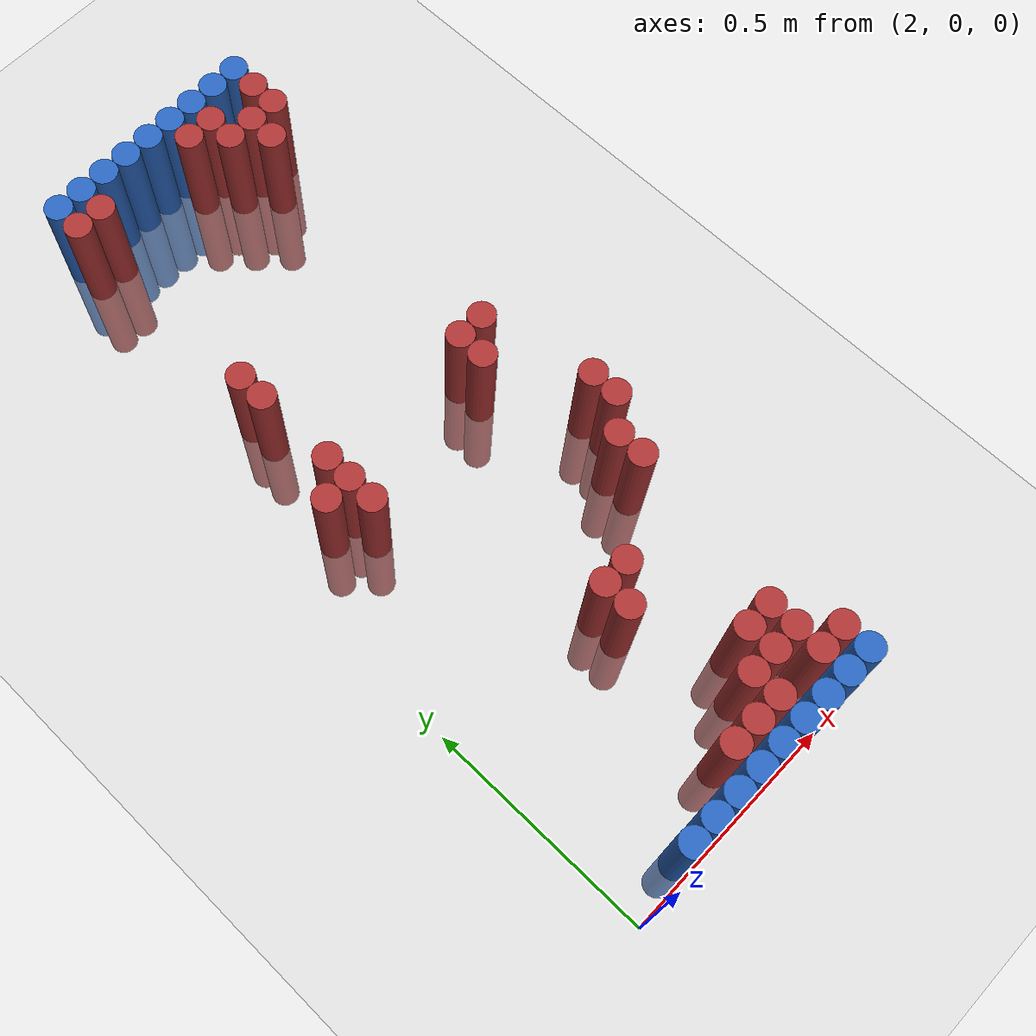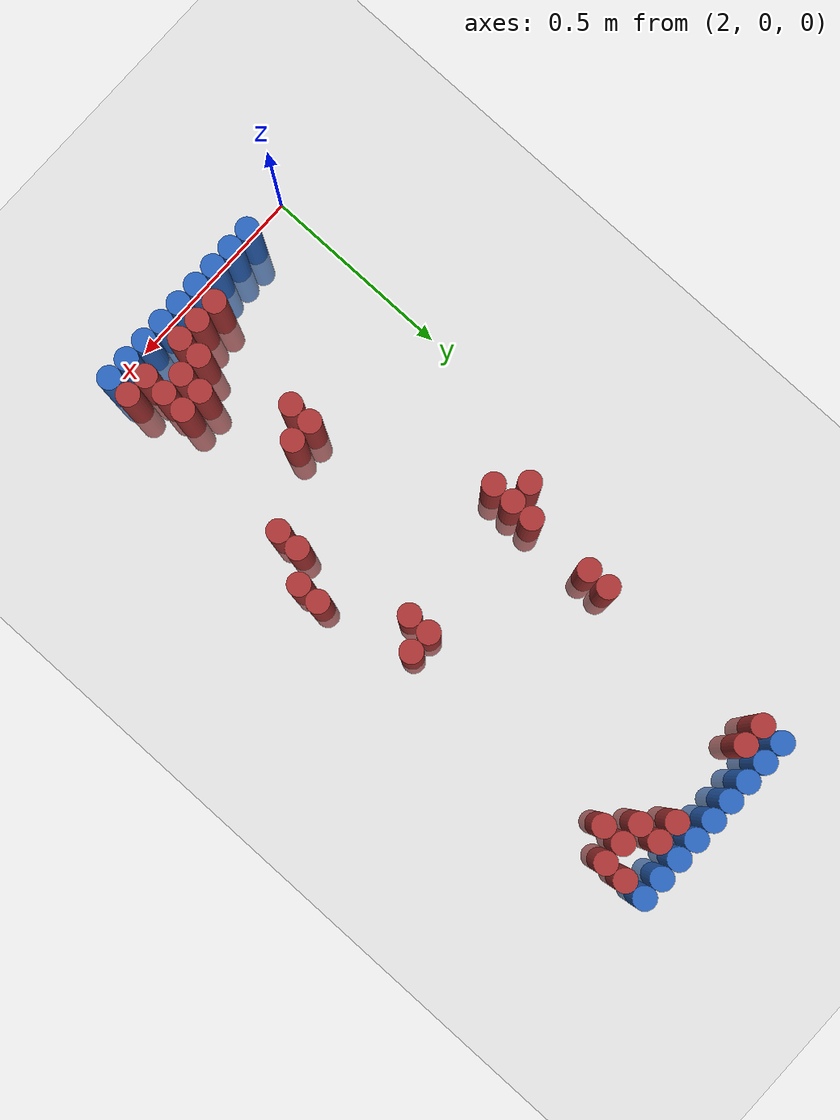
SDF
<sdf version="1.6">
 <world name="default">
  <model name="ground_plane">
   <static>1</static>
   <link name="link">
    <collision name="collision">
     <geometry><plane><normal>0 0 1</normal><size>100 100</size></plane></geometry>
     <surface><friction><ode><mu>100</mu><mu2>50</mu2></ode></friction></surface>
    </collision>
    <visual name="visual">
     <cast_shadows>0</cast_shadows>
     <geometry><plane><normal>0 0 1</normal><size>100 100</size></plane></geometry>
     <material>
      <script><uri>file://media/materials/scripts/gazebo.material</uri><name>Gazebo/Grey</name></script>
     </material>
    </visual>
   </link>
  </model>
  <model name="unit_cylinder_97">
   <static>1</static>
   <pose>2.190000 1.770000 0.000000 0.000000 0.000000 0.000000</pose>
   <link name="link">
    <inertial>
     <mass>1</mass>
     <inertia><ixx>0.145833</ixx><ixy>0</ixy><ixz>0</ixz><iyy>0.145833</iyy><iyz>0</iyz><izz>0.125</izz></inertia>
    </inertial>
    <collision name="collision">
     <geometry><cylinder><radius>0.030000</radius><length>0.5</length></cylinder></geometry>
    </collision>
    <visual name="visual">
     <geometry><cylinder><radius>0.030000</radius><length>0.5</length></cylinder></geometry>
     <material>
      <ambient>0.152000 0.379000 0.720000 1</ambient>
      <diffuse>0.152000 0.379000 0.720000 1</diffuse>
     </material>
     <material>
      <script><name>Gazebo/Grey</name><uri>file://media/materials/scripts/gazebo.material</uri></script>
     </material>
    </visual>
   </link>
  </model>
  <model name="unit_cylinder_98">
   <static>1</static>
   <pose>2.250000 1.770000 0.000000 0.000000 0.000000 0.000000</pose>
   <link name="link">
    <inertial>
     <mass>1</mass>
     <inertia><ixx>0.145833</ixx><ixy>0</ixy><ixz>0</ixz><iyy>0.145833</iyy><iyz>0</iyz><izz>0.125</izz></inertia>
    </inertial>
    <collision name="collision">
     <geometry><cylinder><radius>0.030000</radius><length>0.5</length></cylinder></geometry>
    </collision>
    <visual name="visual">
     <geometry><cylinder><radius>0.030000</radius><length>0.5</length></cylinder></geometry>
     <material>
      <ambient>0.152000 0.379000 0.720000 1</ambient>
      <diffuse>0.152000 0.379000 0.720000 1</diffuse>
     </material>
     <material>
      <script><name>Gazebo/Grey</name><uri>file://media/materials/scripts/gazebo.material</uri></script>
     </material>
    </visual>
   </link>
  </model>
  <model name="unit_cylinder_99">
   <static>1</static>
   <pose>2.310000 1.770000 0.000000 0.000000 0.000000 0.000000</pose>
   <link name="link">
    <inertial>
     <mass>1</mass>
     <inertia><ixx>0.145833</ixx><ixy>0</ixy><ixz>0</ixz><iyy>0.145833</iyy><iyz>0</iyz><izz>0.125</izz></inertia>
    </inertial>
    <collision name="collision">
     <geometry><cylinder><radius>0.030000</radius><length>0.5</length></cylinder></geometry>
    </collision>
    <visual name="visual">
     <geometry><cylinder><radius>0.030000</radius><length>0.5</length></cylinder></geometry>
     <material>
      <ambient>0.152000 0.379000 0.720000 1</ambient>
      <diffuse>0.152000 0.379000 0.720000 1</diffuse>
     </material>
     <material>
      <script><name>Gazebo/Grey</name><uri>file://media/materials/scripts/gazebo.material</uri></script>
     </material>
    </visual>
   </link>
  </model>
  <model name="unit_cylinder_100">
   <static>1</static>
   <pose>2.370000 1.770000 0.000000 0.000000 0.000000 0.000000</pose>
   <link name="link">
    <inertial>
     <mass>1</mass>
     <inertia><ixx>0.145833</ixx><ixy>0</ixy><ixz>0</ixz><iyy>0.145833</iyy><iyz>0</iyz><izz>0.125</izz></inertia>
    </inertial>
    <collision name="collision">
     <geometry><cylinder><radius>0.030000</radius><length>0.5</length></cylinder></geometry>
    </collision>
    <visual name="visual">
     <geometry><cylinder><radius>0.030000</radius><length>0.5</length></cylinder></geometry>
     <material>
      <ambient>0.152000 0.379000 0.720000 1</ambient>
      <diffuse>0.152000 0.379000 0.720000 1</diffuse>
     </material>
     <material>
      <script><name>Gazebo/Grey</name><uri>file://media/materials/scripts/gazebo.material</uri></script>
     </material>
    </visual>
   </link>
  </model>
  <model name="unit_cylinder_101">
   <static>1</static>
   <pose>2.430000 1.770000 0.000000 0.000000 0.000000 0.000000</pose>
   <link name="link">
    <inertial>
     <mass>1</mass>
     <inertia><ixx>0.145833</ixx><ixy>0</ixy><ixz>0</ixz><iyy>0.145833</iyy><iyz>0</iyz><izz>0.125</izz></inertia>
    </inertial>
    <collision name="collision">
     <geometry><cylinder><radius>0.030000</radius><length>0.5</length></cylinder></geometry>
    </collision>
    <visual name="visual">
     <geometry><cylinder><radius>0.030000</radius><length>0.5</length></cylinder></geometry>
     <material>
      <ambient>0.152000 0.379000 0.720000 1</ambient>
      <diffuse>0.152000 0.379000 0.720000 1</diffuse>
     </material>
     <material>
      <script><name>Gazebo/Grey</name><uri>file://media/materials/scripts/gazebo.material</uri></script>
     </material>
    </visual>
   </link>
  </model>
  <model name="unit_cylinder_102">
   <static>1</static>
   <pose>2.490000 1.770000 0.000000 0.000000 0.000000 0.000000</pose>
   <link name="link">
    <inertial>
     <mass>1</mass>
     <inertia><ixx>0.145833</ixx><ixy>0</ixy><ixz>0</ixz><iyy>0.145833</iyy><iyz>0</iyz><izz>0.125</izz></inertia>
    </inertial>
    <collision name="collision">
     <geometry><cylinder><radius>0.030000</radius><length>0.5</length></cylinder></geometry>
    </collision>
    <visual name="visual">
     <geometry><cylinder><radius>0.030000</radius><length>0.5</length></cylinder></geometry>
     <material>
      <ambient>0.152000 0.379000 0.720000 1</ambient>
      <diffuse>0.152000 0.379000 0.720000 1</diffuse>
     </material>
     <material>
      <script><name>Gazebo/Grey</name><uri>file://media/materials/scripts/gazebo.material</uri></script>
     </material>
    </visual>
   </link>
  </model>
  <model name="unit_cylinder_103">
   <static>1</static>
   <pose>2.550000 1.770000 0.000000 0.000000 0.000000 0.000000</pose>
   <link name="link">
    <inertial>
     <mass>1</mass>
     <inertia><ixx>0.145833</ixx><ixy>0</ixy><ixz>0</ixz><iyy>0.145833</iyy><iyz>0</iyz><izz>0.125</izz></inertia>
    </inertial>
    <collision name="collision">
     <geometry><cylinder><radius>0.030000</radius><length>0.5</length></cylinder></geometry>
    </collision>
    <visual name="visual">
     <geometry><cylinder><radius>0.030000</radius><length>0.5</length></cylinder></geometry>
     <material>
      <ambient>0.152000 0.379000 0.720000 1</ambient>
      <diffuse>0.152000 0.379000 0.720000 1</diffuse>
     </material>
     <material>
      <script><name>Gazebo/Grey</name><uri>file://media/materials/scripts/gazebo.material</uri></script>
     </material>
    </visual>
   </link>
  </model>
  <model name="unit_cylinder_104">
   <static>1</static>
   <pose>2.610000 1.770000 0.000000 0.000000 0.000000 0.000000</pose>
   <link name="link">
    <inertial>
     <mass>1</mass>
     <inertia><ixx>0.145833</ixx><ixy>0</ixy><ixz>0</ixz><iyy>0.145833</iyy><iyz>0</iyz><izz>0.125</izz></inertia>
    </inertial>
    <collision name="collision">
     <geometry><cylinder><radius>0.030000</radius><length>0.5</length></cylinder></geometry>
    </collision>
    <visual name="visual">
     <geometry><cylinder><radius>0.030000</radius><length>0.5</length></cylinder></geometry>
     <material>
      <ambient>0.152000 0.379000 0.720000 1</ambient>
      <diffuse>0.152000 0.379000 0.720000 1</diffuse>
     </material>
     <material>
      <script><name>Gazebo/Grey</name><uri>file://media/materials/scripts/gazebo.material</uri></script>
     </material>
    </visual>
   </link>
  </model>
  <model name="unit_cylinder_105">
   <static>1</static>
   <pose>2.670000 1.770000 0.000000 0.000000 0.000000 0.000000</pose>
   <link name="link">
    <inertial>
     <mass>1</mass>
     <inertia><ixx>0.145833</ixx><ixy>0</ixy><ixz>0</ixz><iyy>0.145833</iyy><iyz>0</iyz><izz>0.125</izz></inertia>
    </inertial>
    <collision name="collision">
     <geometry><cylinder><radius>0.030000</radius><length>0.5</length></cylinder></geometry>
    </collision>
    <visual name="visual">
     <geometry><cylinder><radius>0.030000</radius><length>0.5</length></cylinder></geometry>
     <material>
      <ambient>0.152000 0.379000 0.720000 1</ambient>
      <diffuse>0.152000 0.379000 0.720000 1</diffuse>
     </material>
     <material>
      <script><name>Gazebo/Grey</name><uri>file://media/materials/scripts/gazebo.material</uri></script>
     </material>
    </visual>
   </link>
  </model>
  <model name="unit_cylinder_127">
   <static>1</static>
   <pose>2.190000 1.710000 0.000000 0.000000 0.000000 0.000000</pose>
   <link name="link">
    <inertial>
     <mass>1</mass>
     <inertia><ixx>0.145833</ixx><ixy>0</ixy><ixz>0</ixz><iyy>0.145833</iyy><iyz>0</iyz><izz>0.125</izz></inertia>
    </inertial>
    <collision name="collision">
     <geometry><cylinder><radius>0.030000</radius><length>0.5</length></cylinder></geometry>
    </collision>
    <visual name="visual">
     <geometry><cylinder><radius>0.030000</radius><length>0.5</length></cylinder></geometry>
     <material>
      <ambient>0.648000 0.192000 0.192000 1</ambient>
      <diffuse>0.648000 0.192000 0.192000 1</diffuse>
     </material>
     <material>
      <script><name>Gazebo/Grey</name><uri>file://media/materials/scripts/gazebo.material</uri></script>
     </material>
    </visual>
   </link>
  </model>
  <model name="unit_cylinder_128">
   <static>1</static>
   <pose>2.250000 1.710000 0.000000 0.000000 0.000000 0.000000</pose>
   <link name="link">
    <inertial>
     <mass>1</mass>
     <inertia><ixx>0.145833</ixx><ixy>0</ixy><ixz>0</ixz><iyy>0.145833</iyy><iyz>0</iyz><izz>0.125</izz></inertia>
    </inertial>
    <collision name="collision">
     <geometry><cylinder><radius>0.030000</radius><length>0.5</length></cylinder></geometry>
    </collision>
    <visual name="visual">
     <geometry><cylinder><radius>0.030000</radius><length>0.5</length></cylinder></geometry>
     <material>
      <ambient>0.648000 0.192000 0.192000 1</ambient>
      <diffuse>0.648000 0.192000 0.192000 1</diffuse>
     </material>
     <material>
      <script><name>Gazebo/Grey</name><uri>file://media/materials/scripts/gazebo.material</uri></script>
     </material>
    </visual>
   </link>
  </model>
  <model name="unit_cylinder_129">
   <static>1</static>
   <pose>2.490000 1.710000 0.000000 0.000000 0.000000 0.000000</pose>
   <link name="link">
    <inertial>
     <mass>1</mass>
     <inertia><ixx>0.145833</ixx><ixy>0</ixy><ixz>0</ixz><iyy>0.145833</iyy><iyz>0</iyz><izz>0.125</izz></inertia>
    </inertial>
    <collision name="collision">
     <geometry><cylinder><radius>0.030000</radius><length>0.5</length></cylinder></geometry>
    </collision>
    <visual name="visual">
     <geometry><cylinder><radius>0.030000</radius><length>0.5</length></cylinder></geometry>
     <material>
      <ambient>0.648000 0.192000 0.192000 1</ambient>
      <diffuse>0.648000 0.192000 0.192000 1</diffuse>
     </material>
     <material>
      <script><name>Gazebo/Grey</name><uri>file://media/materials/scripts/gazebo.material</uri></script>
     </material>
    </visual>
   </link>
  </model>
  <model name="unit_cylinder_130">
   <static>1</static>
   <pose>2.550000 1.710000 0.000000 0.000000 0.000000 0.000000</pose>
   <link name="link">
    <inertial>
     <mass>1</mass>
     <inertia><ixx>0.145833</ixx><ixy>0</ixy><ixz>0</ixz><iyy>0.145833</iyy><iyz>0</iyz><izz>0.125</izz></inertia>
    </inertial>
    <collision name="collision">
     <geometry><cylinder><radius>0.030000</radius><length>0.5</length></cylinder></geometry>
    </collision>
    <visual name="visual">
     <geometry><cylinder><radius>0.030000</radius><length>0.5</length></cylinder></geometry>
     <material>
      <ambient>0.648000 0.192000 0.192000 1</ambient>
      <diffuse>0.648000 0.192000 0.192000 1</diffuse>
     </material>
     <material>
      <script><name>Gazebo/Grey</name><uri>file://media/materials/scripts/gazebo.material</uri></script>
     </material>
    </visual>
   </link>
  </model>
  <model name="unit_cylinder_131">
   <static>1</static>
   <pose>2.670000 1.710000 0.000000 0.000000 0.000000 0.000000</pose>
   <link name="link">
    <inertial>
     <mass>1</mass>
     <inertia><ixx>0.145833</ixx><ixy>0</ixy><ixz>0</ixz><iyy>0.145833</iyy><iyz>0</iyz><izz>0.125</izz></inertia>
    </inertial>
    <collision name="collision">
     <geometry><cylinder><radius>0.030000</radius><length>0.5</length></cylinder></geometry>
    </collision>
    <visual name="visual">
     <geometry><cylinder><radius>0.030000</radius><length>0.5</length></cylinder></geometry>
     <material>
      <ambient>0.648000 0.192000 0.192000 1</ambient>
      <diffuse>0.648000 0.192000 0.192000 1</diffuse>
     </material>
     <material>
      <script><name>Gazebo/Grey</name><uri>file://media/materials/scripts/gazebo.material</uri></script>
     </material>
    </visual>
   </link>
  </model>
  <model name="unit_cylinder_139">
   <static>1</static>
   <pose>2.550000 1.650000 0.000000 0.000000 0.000000 0.000000</pose>
   <link name="link">
    <inertial>
     <mass>1</mass>
     <inertia><ixx>0.145833</ixx><ixy>0</ixy><ixz>0</ixz><iyy>0.145833</iyy><iyz>0</iyz><izz>0.125</izz></inertia>
    </inertial>
    <collision name="collision">
     <geometry><cylinder><radius>0.030000</radius><length>0.5</length></cylinder></geometry>
    </collision>
    <visual name="visual">
     <geometry><cylinder><radius>0.030000</radius><length>0.5</length></cylinder></geometry>
     <material>
      <ambient>0.648000 0.192000 0.192000 1</ambient>
      <diffuse>0.648000 0.192000 0.192000 1</diffuse>
     </material>
     <material>
      <script><name>Gazebo/Grey</name><uri>file://media/materials/scripts/gazebo.material</uri></script>
     </material>
    </visual>
   </link>
  </model>
  <model name="unit_cylinder_140">
   <static>1</static>
   <pose>2.610000 1.650000 0.000000 0.000000 0.000000 0.000000</pose>
   <link name="link">
    <inertial>
     <mass>1</mass>
     <inertia><ixx>0.145833</ixx><ixy>0</ixy><ixz>0</ixz><iyy>0.145833</iyy><iyz>0</iyz><izz>0.125</izz></inertia>
    </inertial>
    <collision name="collision">
     <geometry><cylinder><radius>0.030000</radius><length>0.5</length></cylinder></geometry>
    </collision>
    <visual name="visual">
     <geometry><cylinder><radius>0.030000</radius><length>0.5</length></cylinder></geometry>
     <material>
      <ambient>0.648000 0.192000 0.192000 1</ambient>
      <diffuse>0.648000 0.192000 0.192000 1</diffuse>
     </material>
     <material>
      <script><name>Gazebo/Grey</name><uri>file://media/materials/scripts/gazebo.material</uri></script>
     </material>
    </visual>
   </link>
  </model>
  <model name="unit_cylinder_141">
   <static>1</static>
   <pose>2.670000 1.650000 0.000000 0.000000 0.000000 0.000000</pose>
   <link name="link">
    <inertial>
     <mass>1</mass>
     <inertia><ixx>0.145833</ixx><ixy>0</ixy><ixz>0</ixz><iyy>0.145833</iyy><iyz>0</iyz><izz>0.125</izz></inertia>
    </inertial>
    <collision name="collision">
     <geometry><cylinder><radius>0.030000</radius><length>0.5</length></cylinder></geometry>
    </collision>
    <visual name="visual">
     <geometry><cylinder><radius>0.030000</radius><length>0.5</length></cylinder></geometry>
     <material>
      <ambient>0.648000 0.192000 0.192000 1</ambient>
      <diffuse>0.648000 0.192000 0.192000 1</diffuse>
     </material>
     <material>
      <script><name>Gazebo/Grey</name><uri>file://media/materials/scripts/gazebo.material</uri></script>
     </material>
    </visual>
   </link>
  </model>
  <model name="unit_cylinder_146">
   <static>1</static>
   <pose>2.610000 1.590000 0.000000 0.000000 0.000000 0.000000</pose>
   <link name="link">
    <inertial>
     <mass>1</mass>
     <inertia><ixx>0.145833</ixx><ixy>0</ixy><ixz>0</ixz><iyy>0.145833</iyy><iyz>0</iyz><izz>0.125</izz></inertia>
    </inertial>
    <collision name="collision">
     <geometry><cylinder><radius>0.030000</radius><length>0.5</length></cylinder></geometry>
    </collision>
    <visual name="visual">
     <geometry><cylinder><radius>0.030000</radius><length>0.5</length></cylinder></geometry>
     <material>
      <ambient>0.648000 0.192000 0.192000 1</ambient>
      <diffuse>0.648000 0.192000 0.192000 1</diffuse>
     </material>
     <material>
      <script><name>Gazebo/Grey</name><uri>file://media/materials/scripts/gazebo.material</uri></script>
     </material>
    </visual>
   </link>
  </model>
  <model name="unit_cylinder_169">
   <static>1</static>
   <pose>2.190000 1.230000 0.000000 0.000000 0.000000 0.000000</pose>
   <link name="link">
    <inertial>
     <mass>1</mass>
     <inertia><ixx>0.145833</ixx><ixy>0</ixy><ixz>0</ixz><iyy>0.145833</iyy><iyz>0</iyz><izz>0.125</izz></inertia>
    </inertial>
    <collision name="collision">
     <geometry><cylinder><radius>0.030000</radius><length>0.5</length></cylinder></geometry>
    </collision>
    <visual name="visual">
     <geometry><cylinder><radius>0.030000</radius><length>0.5</length></cylinder></geometry>
     <material>
      <ambient>0.648000 0.192000 0.192000 1</ambient>
      <diffuse>0.648000 0.192000 0.192000 1</diffuse>
     </material>
     <material>
      <script><name>Gazebo/Grey</name><uri>file://media/materials/scripts/gazebo.material</uri></script>
     </material>
    </visual>
   </link>
  </model>
  <model name="unit_cylinder_171">
   <static>1</static>
   <pose>2.190000 1.170000 0.000000 0.000000 0.000000 0.000000</pose>
   <link name="link">
    <inertial>
     <mass>1</mass>
     <inertia><ixx>0.145833</ixx><ixy>0</ixy><ixz>0</ixz><iyy>0.145833</iyy><iyz>0</iyz><izz>0.125</izz></inertia>
    </inertial>
    <collision name="collision">
     <geometry><cylinder><radius>0.030000</radius><length>0.5</length></cylinder></geometry>
    </collision>
    <visual name="visual">
     <geometry><cylinder><radius>0.030000</radius><length>0.5</length></cylinder></geometry>
     <material>
      <ambient>0.648000 0.192000 0.192000 1</ambient>
      <diffuse>0.648000 0.192000 0.192000 1</diffuse>
     </material>
     <material>
      <script><name>Gazebo/Grey</name><uri>file://media/materials/scripts/gazebo.material</uri></script>
     </material>
    </visual>
   </link>
  </model>
  <model name="unit_cylinder_177">
   <static>1</static>
   <pose>2.190000 0.990000 0.000000 0.000000 0.000000 0.000000</pose>
   <link name="link">
    <inertial>
     <mass>1</mass>
     <inertia><ixx>0.145833</ixx><ixy>0</ixy><ixz>0</ixz><iyy>0.145833</iyy><iyz>0</iyz><izz>0.125</izz></inertia>
    </inertial>
    <collision name="collision">
     <geometry><cylinder><radius>0.030000</radius><length>0.5</length></cylinder></geometry>
    </collision>
    <visual name="visual">
     <geometry><cylinder><radius>0.030000</radius><length>0.5</length></cylinder></geometry>
     <material>
      <ambient>0.648000 0.192000 0.192000 1</ambient>
      <diffuse>0.648000 0.192000 0.192000 1</diffuse>
     </material>
     <material>
      <script><name>Gazebo/Grey</name><uri>file://media/materials/scripts/gazebo.material</uri></script>
     </material>
    </visual>
   </link>
  </model>
  <model name="unit_cylinder_178">
   <static>1</static>
   <pose>2.550000 0.990000 0.000000 0.000000 0.000000 0.000000</pose>
   <link name="link">
    <inertial>
     <mass>1</mass>
     <inertia><ixx>0.145833</ixx><ixy>0</ixy><ixz>0</ixz><iyy>0.145833</iyy><iyz>0</iyz><izz>0.125</izz></inertia>
    </inertial>
    <collision name="collision">
     <geometry><cylinder><radius>0.030000</radius><length>0.5</length></cylinder></geometry>
    </collision>
    <visual name="visual">
     <geometry><cylinder><radius>0.030000</radius><length>0.5</length></cylinder></geometry>
     <material>
      <ambient>0.648000 0.192000 0.192000 1</ambient>
      <diffuse>0.648000 0.192000 0.192000 1</diffuse>
     </material>
     <material>
      <script><name>Gazebo/Grey</name><uri>file://media/materials/scripts/gazebo.material</uri></script>
     </material>
    </visual>
   </link>
  </model>
  <model name="unit_cylinder_179">
   <static>1</static>
   <pose>2.610000 0.990000 0.000000 0.000000 0.000000 0.000000</pose>
   <link name="link">
    <inertial>
     <mass>1</mass>
     <inertia><ixx>0.145833</ixx><ixy>0</ixy><ixz>0</ixz><iyy>0.145833</iyy><iyz>0</iyz><izz>0.125</izz></inertia>
    </inertial>
    <collision name="collision">
     <geometry><cylinder><radius>0.030000</radius><length>0.5</length></cylinder></geometry>
    </collision>
    <visual name="visual">
     <geometry><cylinder><radius>0.030000</radius><length>0.5</length></cylinder></geometry>
     <material>
      <ambient>0.648000 0.192000 0.192000 1</ambient>
      <diffuse>0.648000 0.192000 0.192000 1</diffuse>
     </material>
     <material>
      <script><name>Gazebo/Grey</name><uri>file://media/materials/scripts/gazebo.material</uri></script>
     </material>
    </visual>
   </link>
  </model>
  <model name="unit_cylinder_180">
   <static>1</static>
   <pose>2.130000 0.930000 0.000000 0.000000 0.000000 0.000000</pose>
   <link name="link">
    <inertial>
     <mass>1</mass>
     <inertia><ixx>0.145833</ixx><ixy>0</ixy><ixz>0</ixz><iyy>0.145833</iyy><iyz>0</iyz><izz>0.125</izz></inertia>
    </inertial>
    <collision name="collision">
     <geometry><cylinder><radius>0.030000</radius><length>0.5</length></cylinder></geometry>
    </collision>
    <visual name="visual">
     <geometry><cylinder><radius>0.030000</radius><length>0.5</length></cylinder></geometry>
     <material>
      <ambient>0.648000 0.192000 0.192000 1</ambient>
      <diffuse>0.648000 0.192000 0.192000 1</diffuse>
     </material>
     <material>
      <script><name>Gazebo/Grey</name><uri>file://media/materials/scripts/gazebo.material</uri></script>
     </material>
    </visual>
   </link>
  </model>
  <model name="unit_cylinder_181">
   <static>1</static>
   <pose>2.190000 0.930000 0.000000 0.000000 0.000000 0.000000</pose>
   <link name="link">
    <inertial>
     <mass>1</mass>
     <inertia><ixx>0.145833</ixx><ixy>0</ixy><ixz>0</ixz><iyy>0.145833</iyy><iyz>0</iyz><izz>0.125</izz></inertia>
    </inertial>
    <collision name="collision">
     <geometry><cylinder><radius>0.030000</radius><length>0.5</length></cylinder></geometry>
    </collision>
    <visual name="visual">
     <geometry><cylinder><radius>0.030000</radius><length>0.5</length></cylinder></geometry>
     <material>
      <ambient>0.648000 0.192000 0.192000 1</ambient>
      <diffuse>0.648000 0.192000 0.192000 1</diffuse>
     </material>
     <material>
      <script><name>Gazebo/Grey</name><uri>file://media/materials/scripts/gazebo.material</uri></script>
     </material>
    </visual>
   </link>
  </model>
  <model name="unit_cylinder_182">
   <static>1</static>
   <pose>2.550000 0.930000 0.000000 0.000000 0.000000 0.000000</pose>
   <link name="link">
    <inertial>
     <mass>1</mass>
     <inertia><ixx>0.145833</ixx><ixy>0</ixy><ixz>0</ixz><iyy>0.145833</iyy><iyz>0</iyz><izz>0.125</izz></inertia>
    </inertial>
    <collision name="collision">
     <geometry><cylinder><radius>0.030000</radius><length>0.5</length></cylinder></geometry>
    </collision>
    <visual name="visual">
     <geometry><cylinder><radius>0.030000</radius><length>0.5</length></cylinder></geometry>
     <material>
      <ambient>0.648000 0.192000 0.192000 1</ambient>
      <diffuse>0.648000 0.192000 0.192000 1</diffuse>
     </material>
     <material>
      <script><name>Gazebo/Grey</name><uri>file://media/materials/scripts/gazebo.material</uri></script>
     </material>
    </visual>
   </link>
  </model>
  <model name="unit_cylinder_183">
   <static>1</static>
   <pose>2.190000 0.870000 0.000000 0.000000 0.000000 0.000000</pose>
   <link name="link">
    <inertial>
     <mass>1</mass>
     <inertia><ixx>0.145833</ixx><ixy>0</ixy><ixz>0</ixz><iyy>0.145833</iyy><iyz>0</iyz><izz>0.125</izz></inertia>
    </inertial>
    <collision name="collision">
     <geometry><cylinder><radius>0.030000</radius><length>0.5</length></cylinder></geometry>
    </collision>
    <visual name="visual">
     <geometry><cylinder><radius>0.030000</radius><length>0.5</length></cylinder></geometry>
     <material>
      <ambient>0.648000 0.192000 0.192000 1</ambient>
      <diffuse>0.648000 0.192000 0.192000 1</diffuse>
     </material>
     <material>
      <script><name>Gazebo/Grey</name><uri>file://media/materials/scripts/gazebo.material</uri></script>
     </material>
    </visual>
   </link>
  </model>
  <model name="unit_cylinder_193">
   <static>1</static>
   <pose>2.670000 0.750000 0.000000 0.000000 0.000000 0.000000</pose>
   <link name="link">
    <inertial>
     <mass>1</mass>
     <inertia><ixx>0.145833</ixx><ixy>0</ixy><ixz>0</ixz><iyy>0.145833</iyy><iyz>0</iyz><izz>0.125</izz></inertia>
    </inertial>
    <collision name="collision">
     <geometry><cylinder><radius>0.030000</radius><length>0.5</length></cylinder></geometry>
    </collision>
    <visual name="visual">
     <geometry><cylinder><radius>0.030000</radius><length>0.5</length></cylinder></geometry>
     <material>
      <ambient>0.648000 0.192000 0.192000 1</ambient>
      <diffuse>0.648000 0.192000 0.192000 1</diffuse>
     </material>
     <material>
      <script><name>Gazebo/Grey</name><uri>file://media/materials/scripts/gazebo.material</uri></script>
     </material>
    </visual>
   </link>
  </model>
  <model name="unit_cylinder_200">
   <static>1</static>
   <pose>2.670000 0.690000 0.000000 0.000000 0.000000 0.000000</pose>
   <link name="link">
    <inertial>
     <mass>1</mass>
     <inertia><ixx>0.145833</ixx><ixy>0</ixy><ixz>0</ixz><iyy>0.145833</iyy><iyz>0</iyz><izz>0.125</izz></inertia>
    </inertial>
    <collision name="collision">
     <geometry><cylinder><radius>0.030000</radius><length>0.5</length></cylinder></geometry>
    </collision>
    <visual name="visual">
     <geometry><cylinder><radius>0.030000</radius><length>0.5</length></cylinder></geometry>
     <material>
      <ambient>0.648000 0.192000 0.192000 1</ambient>
      <diffuse>0.648000 0.192000 0.192000 1</diffuse>
     </material>
     <material>
      <script><name>Gazebo/Grey</name><uri>file://media/materials/scripts/gazebo.material</uri></script>
     </material>
    </visual>
   </link>
  </model>
  <model name="unit_cylinder_205">
   <static>1</static>
   <pose>2.610000 0.630000 0.000000 0.000000 0.000000 0.000000</pose>
   <link name="link">
    <inertial>
     <mass>1</mass>
     <inertia><ixx>0.145833</ixx><ixy>0</ixy><ixz>0</ixz><iyy>0.145833</iyy><iyz>0</iyz><izz>0.125</izz></inertia>
    </inertial>
    <collision name="collision">
     <geometry><cylinder><radius>0.030000</radius><length>0.5</length></cylinder></geometry>
    </collision>
    <visual name="visual">
     <geometry><cylinder><radius>0.030000</radius><length>0.5</length></cylinder></geometry>
     <material>
      <ambient>0.648000 0.192000 0.192000 1</ambient>
      <diffuse>0.648000 0.192000 0.192000 1</diffuse>
     </material>
     <material>
      <script><name>Gazebo/Grey</name><uri>file://media/materials/scripts/gazebo.material</uri></script>
     </material>
    </visual>
   </link>
  </model>
  <model name="unit_cylinder_212">
   <static>1</static>
   <pose>2.610000 0.570000 0.000000 0.000000 0.000000 0.000000</pose>
   <link name="link">
    <inertial>
     <mass>1</mass>
     <inertia><ixx>0.145833</ixx><ixy>0</ixy><ixz>0</ixz><iyy>0.145833</iyy><iyz>0</iyz><izz>0.125</izz></inertia>
    </inertial>
    <collision name="collision">
     <geometry><cylinder><radius>0.030000</radius><length>0.5</length></cylinder></geometry>
    </collision>
    <visual name="visual">
     <geometry><cylinder><radius>0.030000</radius><length>0.5</length></cylinder></geometry>
     <material>
      <ambient>0.648000 0.192000 0.192000 1</ambient>
      <diffuse>0.648000 0.192000 0.192000 1</diffuse>
     </material>
     <material>
      <script><name>Gazebo/Grey</name><uri>file://media/materials/scripts/gazebo.material</uri></script>
     </material>
    </visual>
   </link>
  </model>
  <model name="unit_cylinder_229">
   <static>1</static>
   <pose>2.370000 0.450000 0.000000 0.000000 0.000000 0.000000</pose>
   <link name="link">
    <inertial>
     <mass>1</mass>
     <inertia><ixx>0.145833</ixx><ixy>0</ixy><ixz>0</ixz><iyy>0.145833</iyy><iyz>0</iyz><izz>0.125</izz></inertia>
    </inertial>
    <collision name="collision">
     <geometry><cylinder><radius>0.030000</radius><length>0.5</length></cylinder></geometry>
    </collision>
    <visual name="visual">
     <geometry><cylinder><radius>0.030000</radius><length>0.5</length></cylinder></geometry>
     <material>
      <ambient>0.648000 0.192000 0.192000 1</ambient>
      <diffuse>0.648000 0.192000 0.192000 1</diffuse>
     </material>
     <material>
      <script><name>Gazebo/Grey</name><uri>file://media/materials/scripts/gazebo.material</uri></script>
     </material>
    </visual>
   </link>
  </model>
  <model name="unit_cylinder_230">
   <static>1</static>
   <pose>2.430000 0.450000 0.000000 0.000000 0.000000 0.000000</pose>
   <link name="link">
    <inertial>
     <mass>1</mass>
     <inertia><ixx>0.145833</ixx><ixy>0</ixy><ixz>0</ixz><iyy>0.145833</iyy><iyz>0</iyz><izz>0.125</izz></inertia>
    </inertial>
    <collision name="collision">
     <geometry><cylinder><radius>0.030000</radius><length>0.5</length></cylinder></geometry>
    </collision>
    <visual name="visual">
     <geometry><cylinder><radius>0.030000</radius><length>0.5</length></cylinder></geometry>
     <material>
      <ambient>0.648000 0.192000 0.192000 1</ambient>
      <diffuse>0.648000 0.192000 0.192000 1</diffuse>
     </material>
     <material>
      <script><name>Gazebo/Grey</name><uri>file://media/materials/scripts/gazebo.material</uri></script>
     </material>
    </visual>
   </link>
  </model>
  <model name="unit_cylinder_241">
   <static>1</static>
   <pose>2.370000 0.390000 0.000000 0.000000 0.000000 0.000000</pose>
   <link name="link">
    <inertial>
     <mass>1</mass>
     <inertia><ixx>0.145833</ixx><ixy>0</ixy><ixz>0</ixz><iyy>0.145833</iyy><iyz>0</iyz><izz>0.125</izz></inertia>
    </inertial>
    <collision name="collision">
     <geometry><cylinder><radius>0.030000</radius><length>0.5</length></cylinder></geometry>
    </collision>
    <visual name="visual">
     <geometry><cylinder><radius>0.030000</radius><length>0.5</length></cylinder></geometry>
     <material>
      <ambient>0.648000 0.192000 0.192000 1</ambient>
      <diffuse>0.648000 0.192000 0.192000 1</diffuse>
     </material>
     <material>
      <script><name>Gazebo/Grey</name><uri>file://media/materials/scripts/gazebo.material</uri></script>
     </material>
    </visual>
   </link>
  </model>
  <model name="unit_cylinder_259">
   <static>1</static>
   <pose>2.490000 0.210000 0.000000 0.000000 0.000000 0.000000</pose>
   <link name="link">
    <inertial>
     <mass>1</mass>
     <inertia><ixx>0.145833</ixx><ixy>0</ixy><ixz>0</ixz><iyy>0.145833</iyy><iyz>0</iyz><izz>0.125</izz></inertia>
    </inertial>
    <collision name="collision">
     <geometry><cylinder><radius>0.030000</radius><length>0.5</length></cylinder></geometry>
    </collision>
    <visual name="visual">
     <geometry><cylinder><radius>0.030000</radius><length>0.5</length></cylinder></geometry>
     <material>
      <ambient>0.648000 0.192000 0.192000 1</ambient>
      <diffuse>0.648000 0.192000 0.192000 1</diffuse>
     </material>
     <material>
      <script><name>Gazebo/Grey</name><uri>file://media/materials/scripts/gazebo.material</uri></script>
     </material>
    </visual>
   </link>
  </model>
  <model name="unit_cylinder_260">
   <static>1</static>
   <pose>2.550000 0.210000 0.000000 0.000000 0.000000 0.000000</pose>
   <link name="link">
    <inertial>
     <mass>1</mass>
     <inertia><ixx>0.145833</ixx><ixy>0</ixy><ixz>0</ixz><iyy>0.145833</iyy><iyz>0</iyz><izz>0.125</izz></inertia>
    </inertial>
    <collision name="collision">
     <geometry><cylinder><radius>0.030000</radius><length>0.5</length></cylinder></geometry>
    </collision>
    <visual name="visual">
     <geometry><cylinder><radius>0.030000</radius><length>0.5</length></cylinder></geometry>
     <material>
      <ambient>0.648000 0.192000 0.192000 1</ambient>
      <diffuse>0.648000 0.192000 0.192000 1</diffuse>
     </material>
     <material>
      <script><name>Gazebo/Grey</name><uri>file://media/materials/scripts/gazebo.material</uri></script>
     </material>
    </visual>
   </link>
  </model>
  <model name="unit_cylinder_265">
   <static>1</static>
   <pose>2.430000 0.150000 0.000000 0.000000 0.000000 0.000000</pose>
   <link name="link">
    <inertial>
     <mass>1</mass>
     <inertia><ixx>0.145833</ixx><ixy>0</ixy><ixz>0</ixz><iyy>0.145833</iyy><iyz>0</iyz><izz>0.125</izz></inertia>
    </inertial>
    <collision name="collision">
     <geometry><cylinder><radius>0.030000</radius><length>0.5</length></cylinder></geometry>
    </collision>
    <visual name="visual">
     <geometry><cylinder><radius>0.030000</radius><length>0.5</length></cylinder></geometry>
     <material>
      <ambient>0.648000 0.192000 0.192000 1</ambient>
      <diffuse>0.648000 0.192000 0.192000 1</diffuse>
     </material>
     <material>
      <script><name>Gazebo/Grey</name><uri>file://media/materials/scripts/gazebo.material</uri></script>
     </material>
    </visual>
   </link>
  </model>
  <model name="unit_cylinder_266">
   <static>1</static>
   <pose>2.490000 0.150000 0.000000 0.000000 0.000000 0.000000</pose>
   <link name="link">
    <inertial>
     <mass>1</mass>
     <inertia><ixx>0.145833</ixx><ixy>0</ixy><ixz>0</ixz><iyy>0.145833</iyy><iyz>0</iyz><izz>0.125</izz></inertia>
    </inertial>
    <collision name="collision">
     <geometry><cylinder><radius>0.030000</radius><length>0.5</length></cylinder></geometry>
    </collision>
    <visual name="visual">
     <geometry><cylinder><radius>0.030000</radius><length>0.5</length></cylinder></geometry>
     <material>
      <ambient>0.648000 0.192000 0.192000 1</ambient>
      <diffuse>0.648000 0.192000 0.192000 1</diffuse>
     </material>
     <material>
      <script><name>Gazebo/Grey</name><uri>file://media/materials/scripts/gazebo.material</uri></script>
     </material>
    </visual>
   </link>
  </model>
  <model name="unit_cylinder_267">
   <static>1</static>
   <pose>2.550000 0.150000 0.000000 0.000000 0.000000 0.000000</pose>
   <link name="link">
    <inertial>
     <mass>1</mass>
     <inertia><ixx>0.145833</ixx><ixy>0</ixy><ixz>0</ixz><iyy>0.145833</iyy><iyz>0</iyz><izz>0.125</izz></inertia>
    </inertial>
    <collision name="collision">
     <geometry><cylinder><radius>0.030000</radius><length>0.5</length></cylinder></geometry>
    </collision>
    <visual name="visual">
     <geometry><cylinder><radius>0.030000</radius><length>0.5</length></cylinder></geometry>
     <material>
      <ambient>0.648000 0.192000 0.192000 1</ambient>
      <diffuse>0.648000 0.192000 0.192000 1</diffuse>
     </material>
     <material>
      <script><name>Gazebo/Grey</name><uri>file://media/materials/scripts/gazebo.material</uri></script>
     </material>
    </visual>
   </link>
  </model>
  <model name="unit_cylinder_272">
   <static>1</static>
   <pose>2.310000 0.090000 0.000000 0.000000 0.000000 0.000000</pose>
   <link name="link">
    <inertial>
     <mass>1</mass>
     <inertia><ixx>0.145833</ixx><ixy>0</ixy><ixz>0</ixz><iyy>0.145833</iyy><iyz>0</iyz><izz>0.125</izz></inertia>
    </inertial>
    <collision name="collision">
     <geometry><cylinder><radius>0.030000</radius><length>0.5</length></cylinder></geometry>
    </collision>
    <visual name="visual">
     <geometry><cylinder><radius>0.030000</radius><length>0.5</length></cylinder></geometry>
     <material>
      <ambient>0.648000 0.192000 0.192000 1</ambient>
      <diffuse>0.648000 0.192000 0.192000 1</diffuse>
     </material>
     <material>
      <script><name>Gazebo/Grey</name><uri>file://media/materials/scripts/gazebo.material</uri></script>
     </material>
    </visual>
   </link>
  </model>
  <model name="unit_cylinder_273">
   <static>1</static>
   <pose>2.370000 0.090000 0.000000 0.000000 0.000000 0.000000</pose>
   <link name="link">
    <inertial>
     <mass>1</mass>
     <inertia><ixx>0.145833</ixx><ixy>0</ixy><ixz>0</ixz><iyy>0.145833</iyy><iyz>0</iyz><izz>0.125</izz></inertia>
    </inertial>
    <collision name="collision">
     <geometry><cylinder><radius>0.030000</radius><length>0.5</length></cylinder></geometry>
    </collision>
    <visual name="visual">
     <geometry><cylinder><radius>0.030000</radius><length>0.5</length></cylinder></geometry>
     <material>
      <ambient>0.648000 0.192000 0.192000 1</ambient>
      <diffuse>0.648000 0.192000 0.192000 1</diffuse>
     </material>
     <material>
      <script><name>Gazebo/Grey</name><uri>file://media/materials/scripts/gazebo.material</uri></script>
     </material>
    </visual>
   </link>
  </model>
  <model name="unit_cylinder_274">
   <static>1</static>
   <pose>2.430000 0.090000 0.000000 0.000000 0.000000 0.000000</pose>
   <link name="link">
    <inertial>
     <mass>1</mass>
     <inertia><ixx>0.145833</ixx><ixy>0</ixy><ixz>0</ixz><iyy>0.145833</iyy><iyz>0</iyz><izz>0.125</izz></inertia>
    </inertial>
    <collision name="collision">
     <geometry><cylinder><radius>0.030000</radius><length>0.5</length></cylinder></geometry>
    </collision>
    <visual name="visual">
     <geometry><cylinder><radius>0.030000</radius><length>0.5</length></cylinder></geometry>
     <material>
      <ambient>0.648000 0.192000 0.192000 1</ambient>
      <diffuse>0.648000 0.192000 0.192000 1</diffuse>
     </material>
     <material>
      <script><name>Gazebo/Grey</name><uri>file://media/materials/scripts/gazebo.material</uri></script>
     </material>
    </visual>
   </link>
  </model>
  <model name="unit_cylinder_275">
   <static>1</static>
   <pose>2.550000 0.090000 0.000000 0.000000 0.000000 0.000000</pose>
   <link name="link">
    <inertial>
     <mass>1</mass>
     <inertia><ixx>0.145833</ixx><ixy>0</ixy><ixz>0</ixz><iyy>0.145833</iyy><iyz>0</iyz><izz>0.125</izz></inertia>
    </inertial>
    <collision name="collision">
     <geometry><cylinder><radius>0.030000</radius><length>0.5</length></cylinder></geometry>
    </collision>
    <visual name="visual">
     <geometry><cylinder><radius>0.030000</radius><length>0.5</length></cylinder></geometry>
     <material>
      <ambient>0.648000 0.192000 0.192000 1</ambient>
      <diffuse>0.648000 0.192000 0.192000 1</diffuse>
     </material>
     <material>
      <script><name>Gazebo/Grey</name><uri>file://media/materials/scripts/gazebo.material</uri></script>
     </material>
    </visual>
   </link>
  </model>
  <model name="unit_cylinder_276">
   <static>1</static>
   <pose>2.610000 0.090000 0.000000 0.000000 0.000000 0.000000</pose>
   <link name="link">
    <inertial>
     <mass>1</mass>
     <inertia><ixx>0.145833</ixx><ixy>0</ixy><ixz>0</ixz><iyy>0.145833</iyy><iyz>0</iyz><izz>0.125</izz></inertia>
    </inertial>
    <collision name="collision">
     <geometry><cylinder><radius>0.030000</radius><length>0.5</length></cylinder></geometry>
    </collision>
    <visual name="visual">
     <geometry><cylinder><radius>0.030000</radius><length>0.5</length></cylinder></geometry>
     <material>
      <ambient>0.648000 0.192000 0.192000 1</ambient>
      <diffuse>0.648000 0.192000 0.192000 1</diffuse>
     </material>
     <material>
      <script><name>Gazebo/Grey</name><uri>file://media/materials/scripts/gazebo.material</uri></script>
     </material>
    </visual>
   </link>
  </model>
  <model name="unit_cylinder_287">
   <static>1</static>
   <pose>2.130000 0.030000 0.000000 0.000000 0.000000 0.000000</pose>
   <link name="link">
    <inertial>
     <mass>1</mass>
     <inertia><ixx>0.145833</ixx><ixy>0</ixy><ixz>0</ixz><iyy>0.145833</iyy><iyz>0</iyz><izz>0.125</izz></inertia>
    </inertial>
    <collision name="collision">
     <geometry><cylinder><radius>0.030000</radius><length>0.5</length></cylinder></geometry>
    </collision>
    <visual name="visual">
     <geometry><cylinder><radius>0.030000</radius><length>0.5</length></cylinder></geometry>
     <material>
      <ambient>0.152000 0.379000 0.720000 1</ambient>
      <diffuse>0.152000 0.379000 0.720000 1</diffuse>
     </material>
     <material>
      <script><name>Gazebo/Grey</name><uri>file://media/materials/scripts/gazebo.material</uri></script>
     </material>
    </visual>
   </link>
  </model>
  <model name="unit_cylinder_288">
   <static>1</static>
   <pose>2.190000 0.030000 0.000000 0.000000 0.000000 0.000000</pose>
   <link name="link">
    <inertial>
     <mass>1</mass>
     <inertia><ixx>0.145833</ixx><ixy>0</ixy><ixz>0</ixz><iyy>0.145833</iyy><iyz>0</iyz><izz>0.125</izz></inertia>
    </inertial>
    <collision name="collision">
     <geometry><cylinder><radius>0.030000</radius><length>0.5</length></cylinder></geometry>
    </collision>
    <visual name="visual">
     <geometry><cylinder><radius>0.030000</radius><length>0.5</length></cylinder></geometry>
     <material>
      <ambient>0.152000 0.379000 0.720000 1</ambient>
      <diffuse>0.152000 0.379000 0.720000 1</diffuse>
     </material>
     <material>
      <script><name>Gazebo/Grey</name><uri>file://media/materials/scripts/gazebo.material</uri></script>
     </material>
    </visual>
   </link>
  </model>
  <model name="unit_cylinder_289">
   <static>1</static>
   <pose>2.250000 0.030000 0.000000 0.000000 0.000000 0.000000</pose>
   <link name="link">
    <inertial>
     <mass>1</mass>
     <inertia><ixx>0.145833</ixx><ixy>0</ixy><ixz>0</ixz><iyy>0.145833</iyy><iyz>0</iyz><izz>0.125</izz></inertia>
    </inertial>
    <collision name="collision">
     <geometry><cylinder><radius>0.030000</radius><length>0.5</length></cylinder></geometry>
    </collision>
    <visual name="visual">
     <geometry><cylinder><radius>0.030000</radius><length>0.5</length></cylinder></geometry>
     <material>
      <ambient>0.152000 0.379000 0.720000 1</ambient>
      <diffuse>0.152000 0.379000 0.720000 1</diffuse>
     </material>
     <material>
      <script><name>Gazebo/Grey</name><uri>file://media/materials/scripts/gazebo.material</uri></script>
     </material>
    </visual>
   </link>
  </model>
  <model name="unit_cylinder_290">
   <static>1</static>
   <pose>2.310000 0.030000 0.000000 0.000000 0.000000 0.000000</pose>
   <link name="link">
    <inertial>
     <mass>1</mass>
     <inertia><ixx>0.145833</ixx><ixy>0</ixy><ixz>0</ixz><iyy>0.145833</iyy><iyz>0</iyz><izz>0.125</izz></inertia>
    </inertial>
    <collision name="collision">
     <geometry><cylinder><radius>0.030000</radius><length>0.5</length></cylinder></geometry>
    </collision>
    <visual name="visual">
     <geometry><cylinder><radius>0.030000</radius><length>0.5</length></cylinder></geometry>
     <material>
      <ambient>0.152000 0.379000 0.720000 1</ambient>
      <diffuse>0.152000 0.379000 0.720000 1</diffuse>
     </material>
     <material>
      <script><name>Gazebo/Grey</name><uri>file://media/materials/scripts/gazebo.material</uri></script>
     </material>
    </visual>
   </link>
  </model>
  <model name="unit_cylinder_291">
   <static>1</static>
   <pose>2.370000 0.030000 0.000000 0.000000 0.000000 0.000000</pose>
   <link name="link">
    <inertial>
     <mass>1</mass>
     <inertia><ixx>0.145833</ixx><ixy>0</ixy><ixz>0</ixz><iyy>0.145833</iyy><iyz>0</iyz><izz>0.125</izz></inertia>
    </inertial>
    <collision name="collision">
     <geometry><cylinder><radius>0.030000</radius><length>0.5</length></cylinder></geometry>
    </collision>
    <visual name="visual">
     <geometry><cylinder><radius>0.030000</radius><length>0.5</length></cylinder></geometry>
     <material>
      <ambient>0.152000 0.379000 0.720000 1</ambient>
      <diffuse>0.152000 0.379000 0.720000 1</diffuse>
     </material>
     <material>
      <script><name>Gazebo/Grey</name><uri>file://media/materials/scripts/gazebo.material</uri></script>
     </material>
    </visual>
   </link>
  </model>
  <model name="unit_cylinder_292">
   <static>1</static>
   <pose>2.430000 0.030000 0.000000 0.000000 0.000000 0.000000</pose>
   <link name="link">
    <inertial>
     <mass>1</mass>
     <inertia><ixx>0.145833</ixx><ixy>0</ixy><ixz>0</ixz><iyy>0.145833</iyy><iyz>0</iyz><izz>0.125</izz></inertia>
    </inertial>
    <collision name="collision">
     <geometry><cylinder><radius>0.030000</radius><length>0.5</length></cylinder></geometry>
    </collision>
    <visual name="visual">
     <geometry><cylinder><radius>0.030000</radius><length>0.5</length></cylinder></geometry>
     <material>
      <ambient>0.152000 0.379000 0.720000 1</ambient>
      <diffuse>0.152000 0.379000 0.720000 1</diffuse>
     </material>
     <material>
      <script><name>Gazebo/Grey</name><uri>file://media/materials/scripts/gazebo.material</uri></script>
     </material>
    </visual>
   </link>
  </model>
  <model name="unit_cylinder_293">
   <static>1</static>
   <pose>2.490000 0.030000 0.000000 0.000000 0.000000 0.000000</pose>
   <link name="link">
    <inertial>
     <mass>1</mass>
     <inertia><ixx>0.145833</ixx><ixy>0</ixy><ixz>0</ixz><iyy>0.145833</iyy><iyz>0</iyz><izz>0.125</izz></inertia>
    </inertial>
    <collision name="collision">
     <geometry><cylinder><radius>0.030000</radius><length>0.5</length></cylinder></geometry>
    </collision>
    <visual name="visual">
     <geometry><cylinder><radius>0.030000</radius><length>0.5</length></cylinder></geometry>
     <material>
      <ambient>0.152000 0.379000 0.720000 1</ambient>
      <diffuse>0.152000 0.379000 0.720000 1</diffuse>
     </material>
     <material>
      <script><name>Gazebo/Grey</name><uri>file://media/materials/scripts/gazebo.material</uri></script>
     </material>
    </visual>
   </link>
  </model>
  <model name="unit_cylinder_294">
   <static>1</static>
   <pose>2.550000 0.030000 0.000000 0.000000 0.000000 0.000000</pose>
   <link name="link">
    <inertial>
     <mass>1</mass>
     <inertia><ixx>0.145833</ixx><ixy>0</ixy><ixz>0</ixz><iyy>0.145833</iyy><iyz>0</iyz><izz>0.125</izz></inertia>
    </inertial>
    <collision name="collision">
     <geometry><cylinder><radius>0.030000</radius><length>0.5</length></cylinder></geometry>
    </collision>
    <visual name="visual">
     <geometry><cylinder><radius>0.030000</radius><length>0.5</length></cylinder></geometry>
     <material>
      <ambient>0.152000 0.379000 0.720000 1</ambient>
      <diffuse>0.152000 0.379000 0.720000 1</diffuse>
     </material>
     <material>
      <script><name>Gazebo/Grey</name><uri>file://media/materials/scripts/gazebo.material</uri></script>
     </material>
    </visual>
   </link>
  </model>
  <model name="unit_cylinder_295">
   <static>1</static>
   <pose>2.610000 0.030000 0.000000 0.000000 0.000000 0.000000</pose>
   <link name="link">
    <inertial>
     <mass>1</mass>
     <inertia><ixx>0.145833</ixx><ixy>0</ixy><ixz>0</ixz><iyy>0.145833</iyy><iyz>0</iyz><izz>0.125</izz></inertia>
    </inertial>
    <collision name="collision">
     <geometry><cylinder><radius>0.030000</radius><length>0.5</length></cylinder></geometry>
    </collision>
    <visual name="visual">
     <geometry><cylinder><radius>0.030000</radius><length>0.5</length></cylinder></geometry>
     <material>
      <ambient>0.152000 0.379000 0.720000 1</ambient>
      <diffuse>0.152000 0.379000 0.720000 1</diffuse>
     </material>
     <material>
      <script><name>Gazebo/Grey</name><uri>file://media/materials/scripts/gazebo.material</uri></script>
     </material>
    </visual>
   </link>
  </model>
 </world>
</sdf>
